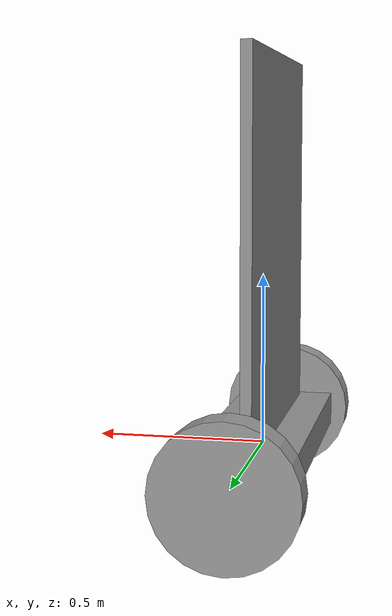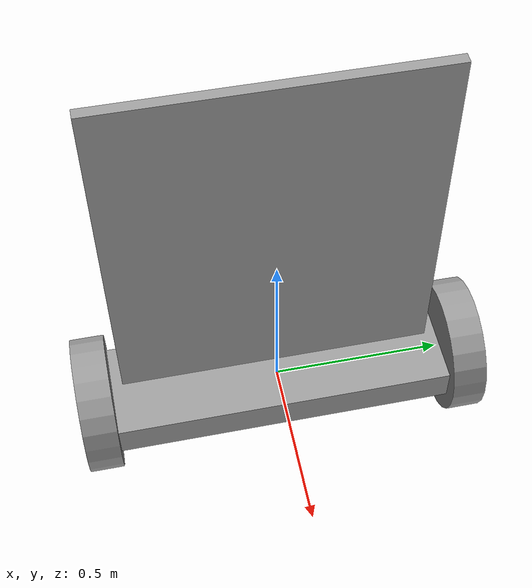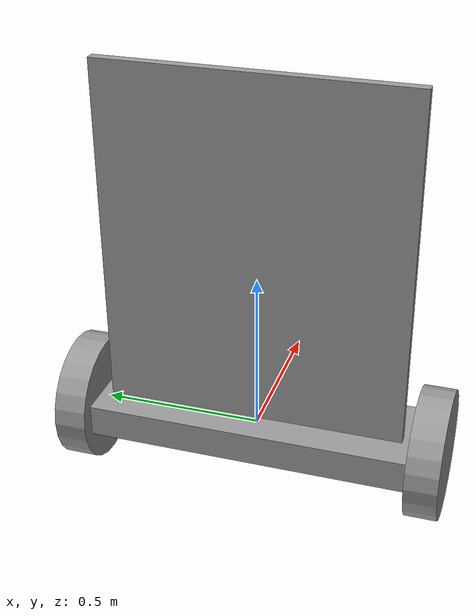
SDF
<?xml version='1.0'?>
<sdf version='1.6'>
  <model name='my_robot'>
    <link name='link_1'>
      <pose frame=''>0 0 0 0 -0 0</pose>
      <inertial>
        <mass>1</mass>
        <inertia>
          <ixx>0.0841667</ixx>
          <ixy>0</ixy>
          <ixz>0</ixz>
          <iyy>0.00833333</iyy>
          <iyz>0</iyz>
          <izz>0.0908333</izz>
        </inertia>
        <pose frame=''>0 0 0 0 -0 0</pose>
      </inertial>
      <self_collide>0</self_collide>
      <kinematic>0</kinematic>
      <visual name='visual'>
        <pose frame=''>0 0 0 0 -0 0</pose>
        <geometry>
          <box>
            <size>0.3 1 0.1</size>
          </box>
        </geometry>
        <material>
          <lighting>1</lighting>
          <script>
            <uri>file://media/materials/scripts/gazebo.material</uri>
            <name>Gazebo/Grey</name>
          </script>
          <shader type='pixel'>
            <normal_map>__default__</normal_map>
          </shader>
          <ambient>0.3 0.3 0.3 1</ambient>
          <diffuse>0.7 0.7 0.7 1</diffuse>
          <specular>0.01 0.01 0.01 1</specular>
          <emissive>0 0 0 1</emissive>
        </material>
        <transparency>0</transparency>
        <cast_shadows>1</cast_shadows>
      </visual>
      <collision name='collision'>
        <laser_retro>0</laser_retro>
        <max_contacts>10</max_contacts>
        <pose frame=''>0 0 0 0 -0 0</pose>
        <geometry>
          <box>
            <size>0.3 1 0.1</size>
          </box>
        </geometry>
        <surface>
          <friction>
            <ode>
              <mu>1</mu>
              <mu2>1</mu2>
              <fdir1>0 0 0</fdir1>
              <slip1>0</slip1>
              <slip2>0</slip2>
            </ode>
            <torsional>
              <coefficient>1</coefficient>
              <patch_radius>0</patch_radius>
              <surface_radius>0</surface_radius>
              <use_patch_radius>1</use_patch_radius>
              <ode>
                <slip>0</slip>
              </ode>
            </torsional>
          </friction>
          <bounce>
            <restitution_coefficient>0</restitution_coefficient>
            <threshold>1e+06</threshold>
          </bounce>
          <contact>
            <collide_without_contact>0</collide_without_contact>
            <collide_without_contact_bitmask>1</collide_without_contact_bitmask>
            <collide_bitmask>1</collide_bitmask>
            <ode>
              <soft_cfm>0</soft_cfm>
              <soft_erp>0.2</soft_erp>
              <kp>1e+13</kp>
              <kd>1</kd>
              <max_vel>0.01</max_vel>
              <min_depth>0</min_depth>
            </ode>
            <bullet>
              <split_impulse>1</split_impulse>
              <split_impulse_penetration_threshold>-0.01</split_impulse_penetration_threshold>
              <soft_cfm>0</soft_cfm>
              <soft_erp>0.2</soft_erp>
              <kp>1e+13</kp>
              <kd>1</kd>
            </bullet>
          </contact>
        </surface>
      </collision>
    </link>
    <link name='link_1_0'>
      <pose frame=''>-0.032445 0 0.590911 0 -0 0</pose>
      <inertial>
        <mass>0.0315759</mass>
        <inertia>
          <ixx>0.00543598</ixx>
          <ixy>0</ixy>
          <ixz>0</ixz>
          <iyy>0.00314574</iyy>
          <iyz>0</iyz>
          <izz>0.00229528</izz>
        </inertia>
        <pose frame=''>0 0 0 0 -0 0</pose>
      </inertial>
      <self_collide>0</self_collide>
      <kinematic>0</kinematic>
      <visual name='visual'>
        <pose frame=''>0 0 0 0 -0 0</pose>
        <geometry>
          <box>
            <size>0.030945 0.933451 1.09295</size>
          </box>
        </geometry>
        <material>
          <lighting>1</lighting>
          <script>
            <uri>file://media/materials/scripts/gazebo.material</uri>
            <name>Gazebo/Grey</name>
          </script>
          <shader type='pixel'/>
          <ambient>0.3 0.3 0.3 1</ambient>
          <diffuse>0.7 0.7 0.7 1</diffuse>
          <specular>0.01 0.01 0.01 1</specular>
          <emissive>0 0 0 1</emissive>
        </material>
        <transparency>0</transparency>
        <cast_shadows>1</cast_shadows>
      </visual>
      <collision name='collision'>
        <laser_retro>0</laser_retro>
        <max_contacts>10</max_contacts>
        <pose frame=''>0 0 0 0 -0 0</pose>
        <geometry>
          <box>
            <size>0.030945 0.933451 1.09295</size>
          </box>
        </geometry>
        <surface>
          <friction>
            <ode>
              <mu>1</mu>
              <mu2>1</mu2>
              <fdir1>0 0 0</fdir1>
              <slip1>0</slip1>
              <slip2>0</slip2>
            </ode>
            <torsional>
              <coefficient>1</coefficient>
              <patch_radius>0</patch_radius>
              <surface_radius>0</surface_radius>
              <use_patch_radius>1</use_patch_radius>
              <ode>
                <slip>0</slip>
              </ode>
            </torsional>
          </friction>
          <bounce>
            <restitution_coefficient>0</restitution_coefficient>
            <threshold>1e+06</threshold>
          </bounce>
          <contact>
            <collide_without_contact>0</collide_without_contact>
            <collide_without_contact_bitmask>1</collide_without_contact_bitmask>
            <collide_bitmask>1</collide_bitmask>
            <ode>
              <soft_cfm>0</soft_cfm>
              <soft_erp>0.2</soft_erp>
              <kp>1e+13</kp>
              <kd>1</kd>
              <max_vel>0.01</max_vel>
              <min_depth>0</min_depth>
            </ode>
            <bullet>
              <split_impulse>1</split_impulse>
              <split_impulse_penetration_threshold>-0.01</split_impulse_penetration_threshold>
              <soft_cfm>0</soft_cfm>
              <soft_erp>0.2</soft_erp>
              <kp>1e+13</kp>
              <kd>1</kd>
            </bullet>
          </contact>
        </surface>
      </collision>
    </link>
    <link name='link_5_clone'>
      <pose frame=''>-0 0.550019 -0 1.5707 -0 0</pose>
      <inertial>
        <mass>1</mass>
        <inertia>
          <ixx>0.145833</ixx>
          <ixy>0</ixy>
          <ixz>0</ixz>
          <iyy>0.145833</iyy>
          <iyz>0</iyz>
          <izz>0.125</izz>
        </inertia>
        <pose frame=''>0 0 0 0 -0 0</pose>
      </inertial>
      <self_collide>0</self_collide>
      <kinematic>0</kinematic>
      <visual name='visual'>
        <pose frame=''>0 0 0 0 -0 0</pose>
        <geometry>
          <cylinder>
            <radius>0.2</radius>
            <length>0.1</length>
          </cylinder>
        </geometry>
        <material>
          <lighting>1</lighting>
          <script>
            <uri>file://media/materials/scripts/gazebo.material</uri>
            <name>Gazebo/Grey</name>
          </script>
          <shader type='pixel'>
            <normal_map>__default__</normal_map>
          </shader>
          <ambient>0.3 0.3 0.3 1</ambient>
          <diffuse>0.7 0.7 0.7 1</diffuse>
          <specular>0.01 0.01 0.01 1</specular>
          <emissive>0 0 0 1</emissive>
        </material>
        <transparency>0</transparency>
        <cast_shadows>1</cast_shadows>
      </visual>
      <collision name='collision'>
        <laser_retro>0</laser_retro>
        <max_contacts>10</max_contacts>
        <pose frame=''>0 0 0 0 -0 0</pose>
        <geometry>
          <cylinder>
            <radius>0.2</radius>
            <length>0.1</length>
          </cylinder>
        </geometry>
        <surface>
          <friction>
            <ode>
              <mu>1</mu>
              <mu2>1</mu2>
              <fdir1>0 0 0</fdir1>
              <slip1>0</slip1>
              <slip2>0</slip2>
            </ode>
            <torsional>
              <coefficient>1</coefficient>
              <patch_radius>0</patch_radius>
              <surface_radius>0</surface_radius>
              <use_patch_radius>1</use_patch_radius>
              <ode>
                <slip>0</slip>
              </ode>
            </torsional>
          </friction>
          <bounce>
            <restitution_coefficient>0</restitution_coefficient>
            <threshold>1e+06</threshold>
          </bounce>
          <contact>
            <collide_without_contact>0</collide_without_contact>
            <collide_without_contact_bitmask>1</collide_without_contact_bitmask>
            <collide_bitmask>1</collide_bitmask>
            <ode>
              <soft_cfm>0</soft_cfm>
              <soft_erp>0.2</soft_erp>
              <kp>1e+13</kp>
              <kd>1</kd>
              <max_vel>0.01</max_vel>
              <min_depth>0</min_depth>
            </ode>
            <bullet>
              <split_impulse>1</split_impulse>
              <split_impulse_penetration_threshold>-0.01</split_impulse_penetration_threshold>
              <soft_cfm>0</soft_cfm>
              <soft_erp>0.2</soft_erp>
              <kp>1e+13</kp>
              <kd>1</kd>
            </bullet>
          </contact>
        </surface>
      </collision>
    </link>
    <link name='link_5_clone_clone'>
      <pose frame=''>0 -0.55002 0 1.5707 -0 0</pose>
      <inertial>
        <mass>1</mass>
        <inertia>
          <ixx>0.145833</ixx>
          <ixy>0</ixy>
          <ixz>0</ixz>
          <iyy>0.145833</iyy>
          <iyz>0</iyz>
          <izz>0.125</izz>
        </inertia>
        <pose frame=''>0 0 0 0 -0 0</pose>
      </inertial>
      <self_collide>0</self_collide>
      <kinematic>0</kinematic>
      <visual name='visual'>
        <pose frame=''>0 0 0 0 -0 0</pose>
        <geometry>
          <cylinder>
            <radius>0.2</radius>
            <length>0.1</length>
          </cylinder>
        </geometry>
        <material>
          <lighting>1</lighting>
          <script>
            <uri>file://media/materials/scripts/gazebo.material</uri>
            <name>Gazebo/Grey</name>
          </script>
          <shader type='pixel'>
            <normal_map>__default__</normal_map>
          </shader>
          <ambient>0.3 0.3 0.3 1</ambient>
          <diffuse>0.7 0.7 0.7 1</diffuse>
          <specular>0.01 0.01 0.01 1</specular>
          <emissive>0 0 0 1</emissive>
        </material>
        <transparency>0</transparency>
        <cast_shadows>1</cast_shadows>
      </visual>
      <collision name='collision'>
        <laser_retro>0</laser_retro>
        <max_contacts>10</max_contacts>
        <pose frame=''>0 0 0 0 -0 0</pose>
        <geometry>
          <cylinder>
            <radius>0.2</radius>
            <length>0.1</length>
          </cylinder>
        </geometry>
        <surface>
          <friction>
            <ode>
              <mu>1</mu>
              <mu2>1</mu2>
              <fdir1>0 0 0</fdir1>
              <slip1>0</slip1>
              <slip2>0</slip2>
            </ode>
            <torsional>
              <coefficient>1</coefficient>
              <patch_radius>0</patch_radius>
              <surface_radius>0</surface_radius>
              <use_patch_radius>1</use_patch_radius>
              <ode>
                <slip>0</slip>
              </ode>
            </torsional>
          </friction>
          <bounce>
            <restitution_coefficient>0</restitution_coefficient>
            <threshold>1e+06</threshold>
          </bounce>
          <contact>
            <collide_without_contact>0</collide_without_contact>
            <collide_without_contact_bitmask>1</collide_without_contact_bitmask>
            <collide_bitmask>1</collide_bitmask>
            <ode>
              <soft_cfm>0</soft_cfm>
              <soft_erp>0.2</soft_erp>
              <kp>1e+13</kp>
              <kd>1</kd>
              <max_vel>0.01</max_vel>
              <min_depth>0</min_depth>
            </ode>
            <bullet>
              <split_impulse>1</split_impulse>
              <split_impulse_penetration_threshold>-0.01</split_impulse_penetration_threshold>
              <soft_cfm>0</soft_cfm>
              <soft_erp>0.2</soft_erp>
              <kp>1e+13</kp>
              <kd>1</kd>
            </bullet>
          </contact>
        </surface>
      </collision>
    </link>
    <joint name='link_1_JOINT_1' type='fixed'>
      <parent>link_1</parent>
      <child>link_1_0</child>
      <pose frame=''>0 0 0 0 -0 0</pose>
      <physics>
        <ode>
          <limit>
            <cfm>0</cfm>
            <erp>0.2</erp>
          </limit>
          <suspension>
            <cfm>0</cfm>
            <erp>0.2</erp>
          </suspension>
        </ode>
      </physics>
    </joint>
    <joint name='link_1_JOINT_3' type='revolute'>
      <parent>link_1</parent>
      <child>link_5_clone_clone</child>
      <pose frame=''>0 0 0 0 -0 0</pose>
      <axis>
        <xyz>0 0 1</xyz>
        <use_parent_model_frame>0</use_parent_model_frame>
        <limit>
          <lower>-1.79769e+308</lower>
          <upper>1.79769e+308</upper>
          <effort>-1</effort>
          <velocity>-1</velocity>
        </limit>
        <dynamics>
          <spring_reference>0</spring_reference>
          <spring_stiffness>0</spring_stiffness>
          <damping>0</damping>
          <friction>0</friction>
        </dynamics>
      </axis>
      <physics>
        <ode>
          <limit>
            <cfm>0</cfm>
            <erp>0.2</erp>
          </limit>
          <suspension>
            <cfm>0</cfm>
            <erp>0.2</erp>
          </suspension>
        </ode>
      </physics>
    </joint>
    <joint name='link_1_JOINT_4' type='revolute'>
      <parent>link_1</parent>
      <child>link_5_clone</child>
      <pose frame=''>0 0 0 0 -0 0</pose>
      <axis>
        <xyz>1 0 0</xyz>
        <use_parent_model_frame>0</use_parent_model_frame>
        <limit>
          <lower>-1.79769e+308</lower>
          <upper>1.79769e+308</upper>
          <effort>-1</effort>
          <velocity>-1</velocity>
        </limit>
        <dynamics>
          <spring_reference>0</spring_reference>
          <spring_stiffness>0</spring_stiffness>
          <damping>0</damping>
          <friction>0</friction>
        </dynamics>
      </axis>
      <physics>
        <ode>
          <limit>
            <cfm>0</cfm>
            <erp>0.2</erp>
          </limit>
          <suspension>
            <cfm>0</cfm>
            <erp>0.2</erp>
          </suspension>
        </ode>
      </physics>
    </joint>
    <static>0</static>
    <allow_auto_disable>1</allow_auto_disable>
  </model>
</sdf>
